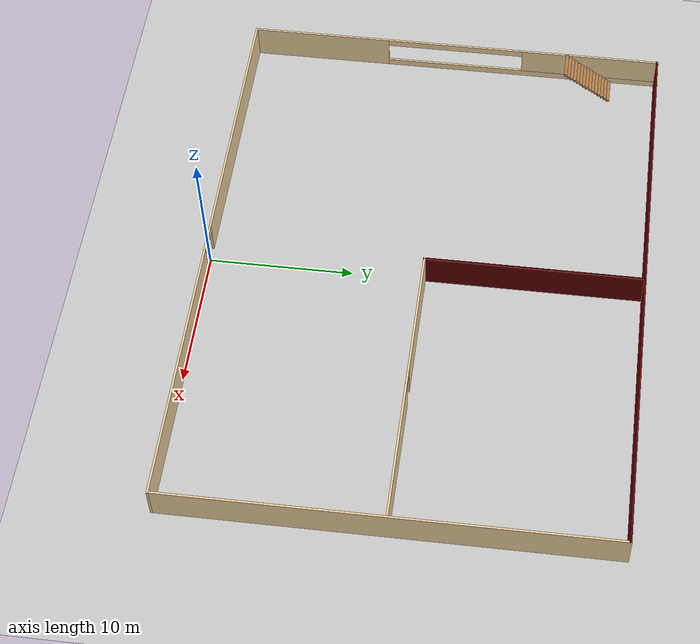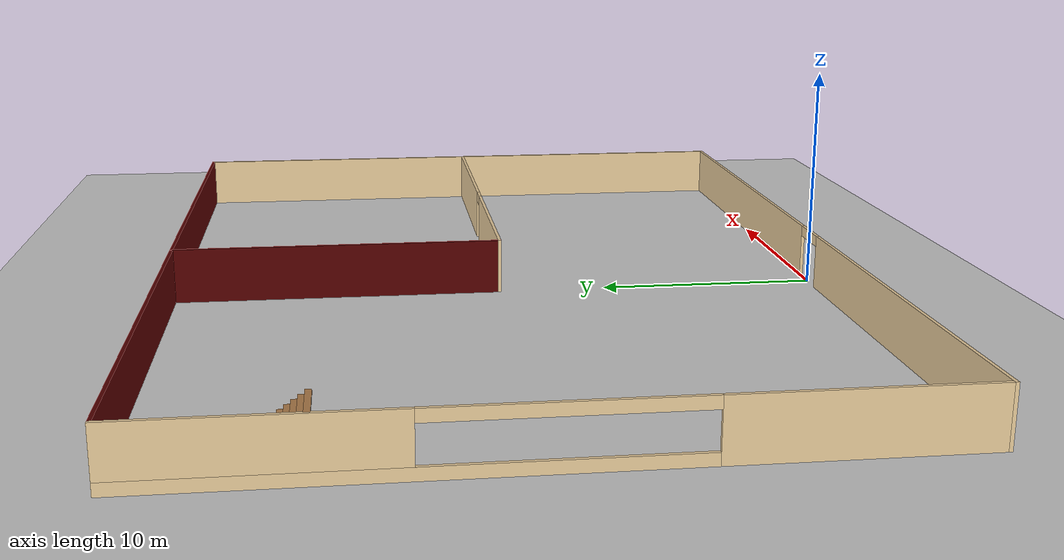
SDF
<sdf version="1.6">
 <world name="default">
  <model name="ground_plane">
   <static>1</static>
   <link name="link">
    <collision name="collision">
     <geometry><plane><normal>0 0 1</normal><size>100 100</size></plane></geometry>
     <surface>
      <contact><collide_bitmask>65535</collide_bitmask></contact>
      <friction><ode><mu>100</mu><mu2>50</mu2></ode></friction>
     </surface>
    </collision>
    <visual name="visual">
     <cast_shadows>0</cast_shadows>
     <geometry><plane><normal>0 0 1</normal><size>100 100</size></plane></geometry>
     <material>
      <script><uri>file://media/materials/scripts/gazebo.material</uri><name>Gazebo/Grey</name></script>
     </material>
    </visual>
   </link>
  </model>
  <model name="House">
   <pose>-0.004038 15 0 0 -0 0</pose>
   <link name="Stairs_0">
    <visual name="Stairs_0_Visual_0">
     <pose>-19 11.6333 0.083333 0 -0 0</pose>
     <geometry><box><size>2 0.233333 0.166667</size></box></geometry>
     <material>
      <script><uri>file://media/materials/scripts/gazebo.material</uri><name>Gazebo/Wood</name></script>
      <ambient>1 1 1 1</ambient>
     </material>
     <meta><layer>0</layer></meta>
    </visual>
    <collision name="Stairs_0_Collision_0">
     <geometry><box><size>2 0.233333 0.166667</size></box></geometry>
     <pose>-19 11.6333 0.083333 0 -0 0</pose>
    </collision>
    <visual name="Stairs_0_Visual_1">
     <pose>-19 11.4 0.25 0 -0 0</pose>
     <geometry><box><size>2 0.233333 0.166667</size></box></geometry>
     <material>
      <script><uri>file://media/materials/scripts/gazebo.material</uri><name>Gazebo/Wood</name></script>
      <ambient>1 1 1 1</ambient>
     </material>
     <meta><layer>0</layer></meta>
    </visual>
    <collision name="Stairs_0_Collision_1">
     <geometry><box><size>2 0.233333 0.166667</size></box></geometry>
     <pose>-19 11.4 0.25 0 -0 0</pose>
    </collision>
    <visual name="Stairs_0_Visual_2">
     <pose>-19 11.1667 0.416667 0 -0 0</pose>
     <geometry><box><size>2 0.233333 0.166667</size></box></geometry>
     <material>
      <script><uri>file://media/materials/scripts/gazebo.material</uri><name>Gazebo/Wood</name></script>
      <ambient>1 1 1 1</ambient>
     </material>
     <meta><layer>0</layer></meta>
    </visual>
    <collision name="Stairs_0_Collision_2">
     <geometry><box><size>2 0.233333 0.166667</size></box></geometry>
     <pose>-19 11.1667 0.416667 0 -0 0</pose>
    </collision>
    <visual name="Stairs_0_Visual_3">
     <pose>-19 10.9333 0.583333 0 -0 0</pose>
     <geometry><box><size>2 0.233333 0.166667</size></box></geometry>
     <material>
      <script><uri>file://media/materials/scripts/gazebo.material</uri><name>Gazebo/Wood</name></script>
      <ambient>1 1 1 1</ambient>
     </material>
     <meta><layer>0</layer></meta>
    </visual>
    <collision name="Stairs_0_Collision_3">
     <geometry><box><size>2 0.233333 0.166667</size></box></geometry>
     <pose>-19 10.9333 0.583333 0 -0 0</pose>
    </collision>
    <visual name="Stairs_0_Visual_4">
     <pose>-19 10.7 0.75 0 -0 0</pose>
     <geometry><box><size>2 0.233333 0.166667</size></box></geometry>
     <material>
      <script><uri>file://media/materials/scripts/gazebo.material</uri><name>Gazebo/Wood</name></script>
      <ambient>1 1 1 1</ambient>
     </material>
     <meta><layer>0</layer></meta>
    </visual>
    <collision name="Stairs_0_Collision_4">
     <geometry><box><size>2 0.233333 0.166667</size></box></geometry>
     <pose>-19 10.7 0.75 0 -0 0</pose>
    </collision>
    <visual name="Stairs_0_Visual_5">
     <pose>-19 10.4667 0.916667 0 -0 0</pose>
     <geometry><box><size>2 0.233333 0.166667</size></box></geometry>
     <material>
      <script><uri>file://media/materials/scripts/gazebo.material</uri><name>Gazebo/Wood</name></script>
      <ambient>1 1 1 1</ambient>
     </material>
     <meta><layer>0</layer></meta>
    </visual>
    <collision name="Stairs_0_Collision_5">
     <geometry><box><size>2 0.233333 0.166667</size></box></geometry>
     <pose>-19 10.4667 0.916667 0 -0 0</pose>
    </collision>
    <visual name="Stairs_0_Visual_6">
     <pose>-19 10.2333 1.08333 0 -0 0</pose>
     <geometry><box><size>2 0.233333 0.166667</size></box></geometry>
     <material>
      <script><uri>file://media/materials/scripts/gazebo.material</uri><name>Gazebo/Wood</name></script>
      <ambient>1 1 1 1</ambient>
     </material>
     <meta><layer>0</layer></meta>
    </visual>
    <collision name="Stairs_0_Collision_6">
     <geometry><box><size>2 0.233333 0.166667</size></box></geometry>
     <pose>-19 10.2333 1.08333 0 -0 0</pose>
    </collision>
    <visual name="Stairs_0_Visual_7">
     <pose>-19 10 1.25 0 -0 0</pose>
     <geometry><box><size>2 0.233333 0.166667</size></box></geometry>
     <material>
      <script><uri>file://media/materials/scripts/gazebo.material</uri><name>Gazebo/Wood</name></script>
      <ambient>1 1 1 1</ambient>
     </material>
     <meta><layer>0</layer></meta>
    </visual>
    <collision name="Stairs_0_Collision_7">
     <geometry><box><size>2 0.233333 0.166667</size></box></geometry>
     <pose>-19 10 1.25 0 -0 0</pose>
    </collision>
    <visual name="Stairs_0_Visual_8">
     <pose>-19 9.76667 1.41667 0 -0 0</pose>
     <geometry><box><size>2 0.233333 0.166667</size></box></geometry>
     <material>
      <script><uri>file://media/materials/scripts/gazebo.material</uri><name>Gazebo/Wood</name></script>
      <ambient>1 1 1 1</ambient>
     </material>
     <meta><layer>0</layer></meta>
    </visual>
    <collision name="Stairs_0_Collision_8">
     <geometry><box><size>2 0.233333 0.166667</size></box></geometry>
     <pose>-19 9.76667 1.41667 0 -0 0</pose>
    </collision>
    <visual name="Stairs_0_Visual_9">
     <pose>-19 9.53333 1.58333 0 -0 0</pose>
     <geometry><box><size>2 0.233333 0.166667</size></box></geometry>
     <material>
      <script><uri>file://media/materials/scripts/gazebo.material</uri><name>Gazebo/Wood</name></script>
      <ambient>1 1 1 1</ambient>
     </material>
     <meta><layer>0</layer></meta>
    </visual>
    <collision name="Stairs_0_Collision_9">
     <geometry><box><size>2 0.233333 0.166667</size></box></geometry>
     <pose>-19 9.53333 1.58333 0 -0 0</pose>
    </collision>
    <visual name="Stairs_0_Visual_10">
     <pose>-19 9.3 1.75 0 -0 0</pose>
     <geometry><box><size>2 0.233333 0.166667</size></box></geometry>
     <material>
      <script><uri>file://media/materials/scripts/gazebo.material</uri><name>Gazebo/Wood</name></script>
      <ambient>1 1 1 1</ambient>
     </material>
     <meta><layer>0</layer></meta>
    </visual>
    <collision name="Stairs_0_Collision_10">
     <geometry><box><size>2 0.233333 0.166667</size></box></geometry>
     <pose>-19 9.3 1.75 0 -0 0</pose>
    </collision>
    <visual name="Stairs_0_Visual_11">
     <pose>-19 9.06667 1.91667 0 -0 0</pose>
     <geometry><box><size>2 0.233333 0.166667</size></box></geometry>
     <material>
      <script><uri>file://media/materials/scripts/gazebo.material</uri><name>Gazebo/Wood</name></script>
      <ambient>1 1 1 1</ambient>
     </material>
     <meta><layer>0</layer></meta>
    </visual>
    <collision name="Stairs_0_Collision_11">
     <geometry><box><size>2 0.233333 0.166667</size></box></geometry>
     <pose>-19 9.06667 1.91667 0 -0 0</pose>
    </collision>
    <visual name="Stairs_0_Visual_12">
     <pose>-19 8.83333 2.08333 0 -0 0</pose>
     <geometry><box><size>2 0.233333 0.166667</size></box></geometry>
     <material>
      <script><uri>file://media/materials/scripts/gazebo.material</uri><name>Gazebo/Wood</name></script>
      <ambient>1 1 1 1</ambient>
     </material>
     <meta><layer>0</layer></meta>
    </visual>
    <collision name="Stairs_0_Collision_12">
     <geometry><box><size>2 0.233333 0.166667</size></box></geometry>
     <pose>-19 8.83333 2.08333 0 -0 0</pose>
    </collision>
    <visual name="Stairs_0_Visual_13">
     <pose>-19 8.6 2.25 0 -0 0</pose>
     <geometry><box><size>2 0.233333 0.166667</size></box></geometry>
     <material>
      <script><uri>file://media/materials/scripts/gazebo.material</uri><name>Gazebo/Wood</name></script>
      <ambient>1 1 1 1</ambient>
     </material>
     <meta><layer>0</layer></meta>
    </visual>
    <collision name="Stairs_0_Collision_13">
     <geometry><box><size>2 0.233333 0.166667</size></box></geometry>
     <pose>-19 8.6 2.25 0 -0 0</pose>
    </collision>
    <visual name="Stairs_0_Visual_14">
     <pose>-19 8.36667 2.41667 0 -0 0</pose>
     <geometry><box><size>2 0.233333 0.166667</size></box></geometry>
     <material>
      <script><uri>file://media/materials/scripts/gazebo.material</uri><name>Gazebo/Wood</name></script>
      <ambient>1 1 1 1</ambient>
     </material>
     <meta><layer>0</layer></meta>
    </visual>
    <collision name="Stairs_0_Collision_14">
     <geometry><box><size>2 0.233333 0.166667</size></box></geometry>
     <pose>-19 8.36667 2.41667 0 -0 0</pose>
    </collision>
   </link>
   <link name="Wall_0">
    <pose>-20 0 0 0 -0 1.5708</pose>
    <visual name="Wall_0_Visual_0">
     <pose>-10.0375 0 1.25 0 -0 0</pose>
     <geometry><box><size>10.075 0.15 2.5</size></box></geometry>
     <material>
      <script><uri>file://media/materials/scripts/gazebo.material</uri><name>Gazebo/Grey</name></script>
      <ambient>0.921569 0.807843 0.615686 1</ambient>
     </material>
     <meta><layer>0</layer></meta>
    </visual>
    <collision name="Wall_0_Collision_0">
     <geometry><box><size>10.075 0.15 2.5</size></box></geometry>
     <pose>-10.0375 0 1.25 0 -0 0</pose>
    </collision>
    <visual name="Wall_0_Visual_1">
     <pose>5.0375 0 0.25 0 -0 0</pose>
     <geometry><box><size>20.075 0.15 0.5</size></box></geometry>
     <material>
      <script><uri>file://media/materials/scripts/gazebo.material</uri><name>Gazebo/Grey</name></script>
      <ambient>0.921569 0.807843 0.615686 1</ambient>
     </material>
     <meta><layer>0</layer></meta>
    </visual>
    <collision name="Wall_0_Collision_1">
     <geometry><box><size>20.075 0.15 0.5</size></box></geometry>
     <pose>5.0375 0 0.25 0 -0 0</pose>
    </collision>
    <visual name="Wall_0_Visual_2">
     <pose>10.0375 0 1.5 0 -0 0</pose>
     <geometry><box><size>10.075 0.15 2</size></box></geometry>
     <material>
      <script><uri>file://media/materials/scripts/gazebo.material</uri><name>Gazebo/Grey</name></script>
      <ambient>0.921569 0.807843 0.615686 1</ambient>
     </material>
     <meta><layer>0</layer></meta>
    </visual>
    <collision name="Wall_0_Collision_2">
     <geometry><box><size>10.075 0.15 2</size></box></geometry>
     <pose>10.0375 0 1.5 0 -0 0</pose>
    </collision>
    <visual name="Wall_0_Visual_3">
     <pose>0 0 2.25 0 -0 0</pose>
     <geometry><box><size>10 0.15 0.5</size></box></geometry>
     <material>
      <script><uri>file://media/materials/scripts/gazebo.material</uri><name>Gazebo/Grey</name></script>
      <ambient>0.921569 0.807843 0.615686 1</ambient>
     </material>
     <meta><layer>0</layer></meta>
    </visual>
    <collision name="Wall_0_Collision_3">
     <geometry><box><size>10 0.15 0.5</size></box></geometry>
     <pose>0 0 2.25 0 -0 0</pose>
    </collision>
   </link>
   <link name="Wall_1">
    <collision name="Wall_1_Collision">
     <geometry><box><size>40.15 0.15 2.5</size></box></geometry>
     <pose>0 0 1.25 0 -0 0</pose>
    </collision>
    <visual name="Wall_1_Visual">
     <pose>0 0 1.25 0 -0 0</pose>
     <geometry><box><size>40.15 0.15 2.5</size></box></geometry>
     <material>
      <script><uri>file://media/materials/scripts/gazebo.material</uri><name>Gazebo/Grey</name></script>
      <ambient>0.333333 0 0 1</ambient>
     </material>
     <meta><layer>0</layer></meta>
    </visual>
    <pose>1e-06 15 0 0 -0 0</pose>
   </link>
   <link name="Wall_2">
    <collision name="Wall_2_Collision">
     <geometry><box><size>30.15 0.15 2.5</size></box></geometry>
     <pose>0 0 1.25 0 -0 0</pose>
    </collision>
    <visual name="Wall_2_Visual">
     <pose>0 0 1.25 0 -0 0</pose>
     <geometry><box><size>30.15 0.15 2.5</size></box></geometry>
     <material>
      <script><uri>file://media/materials/scripts/gazebo.material</uri><name>Gazebo/Grey</name></script>
      <ambient>0.921569 0.807843 0.615686 1</ambient>
     </material>
     <meta><layer>0</layer></meta>
    </visual>
    <pose>20 0 0 0 0 -1.5708</pose>
   </link>
   <link name="Wall_3">
    <pose>1e-06 -15 0 0 -0 3.14159</pose>
    <visual name="Wall_3_Visual_0">
     <pose>-10.5375 0 1.25 0 -0 0</pose>
     <geometry><box><size>19.075 0.15 2.5</size></box></geometry>
     <material>
      <script><uri>file://media/materials/scripts/gazebo.material</uri><name>Gazebo/Grey</name></script>
      <ambient>0.921569 0.807843 0.615686 1</ambient>
     </material>
     <meta><layer>0</layer></meta>
    </visual>
    <collision name="Wall_3_Collision_0">
     <geometry><box><size>19.075 0.15 2.5</size></box></geometry>
     <pose>-10.5375 0 1.25 0 -0 0</pose>
    </collision>
    <visual name="Wall_3_Visual_1">
     <pose>10.5375 0 1.25 0 -0 0</pose>
     <geometry><box><size>19.075 0.15 2.5</size></box></geometry>
     <material>
      <script><uri>file://media/materials/scripts/gazebo.material</uri><name>Gazebo/Grey</name></script>
      <ambient>0.921569 0.807843 0.615686 1</ambient>
     </material>
     <meta><layer>0</layer></meta>
    </visual>
    <collision name="Wall_3_Collision_1">
     <geometry><box><size>19.075 0.15 2.5</size></box></geometry>
     <pose>10.5375 0 1.25 0 -0 0</pose>
    </collision>
    <visual name="Wall_3_Visual_2">
     <pose>0 0 2.25 0 -0 0</pose>
     <geometry><box><size>2 0.15 0.5</size></box></geometry>
     <material>
      <script><uri>file://media/materials/scripts/gazebo.material</uri><name>Gazebo/Grey</name></script>
      <ambient>0.921569 0.807843 0.615686 1</ambient>
     </material>
     <meta><layer>0</layer></meta>
    </visual>
    <collision name="Wall_3_Collision_2">
     <geometry><box><size>2 0.15 0.5</size></box></geometry>
     <pose>0 0 2.25 0 -0 0</pose>
    </collision>
   </link>
   <link name="Wall_5">
    <pose>10 0 0 0 -0 3.14159</pose>
    <visual name="Wall_5_Visual_0">
     <pose>-5.11541 0 1.25 0 -0 0</pose>
     <geometry><box><size>9.91918 0.15 2.5</size></box></geometry>
     <material>
      <script><uri>file://media/materials/scripts/gazebo.material</uri><name>Gazebo/Grey</name></script>
      <ambient>0.921569 0.807843 0.615686 1</ambient>
     </material>
     <meta><layer>0</layer></meta>
    </visual>
    <collision name="Wall_5_Collision_0">
     <geometry><box><size>9.91918 0.15 2.5</size></box></geometry>
     <pose>-5.11541 0 1.25 0 -0 0</pose>
    </collision>
    <visual name="Wall_5_Visual_1">
     <pose>5.40959 0 1.25 0 -0 0</pose>
     <geometry><box><size>9.33082 0.15 2.5</size></box></geometry>
     <material>
      <script><uri>file://media/materials/scripts/gazebo.material</uri><name>Gazebo/Grey</name></script>
      <ambient>0.921569 0.807843 0.615686 1</ambient>
     </material>
     <meta><layer>0</layer></meta>
    </visual>
    <collision name="Wall_5_Collision_1">
     <geometry><box><size>9.33082 0.15 2.5</size></box></geometry>
     <pose>5.40959 0 1.25 0 -0 0</pose>
    </collision>
    <visual name="Wall_5_Visual_2">
     <pose>0.294178 0 2.25 0 -0 0</pose>
     <geometry><box><size>0.9 0.15 0.5</size></box></geometry>
     <material>
      <script><uri>file://media/materials/scripts/gazebo.material</uri><name>Gazebo/Grey</name></script>
      <ambient>0.921569 0.807843 0.615686 1</ambient>
     </material>
     <meta><layer>0</layer></meta>
    </visual>
    <collision name="Wall_5_Collision_2">
     <geometry><box><size>0.9 0.15 0.5</size></box></geometry>
     <pose>0.294178 0 2.25 0 -0 0</pose>
    </collision>
   </link>
   <link name="Wall_6">
    <collision name="Wall_6_Collision">
     <geometry><box><size>15.15 0.15 2.5</size></box></geometry>
     <pose>0 0 1.25 0 -0 0</pose>
    </collision>
    <visual name="Wall_6_Visual">
     <pose>0 0 1.25 0 -0 0</pose>
     <geometry><box><size>15.15 0.15 2.5</size></box></geometry>
     <material>
      <script><uri>file://media/materials/scripts/gazebo.material</uri><name>Gazebo/Grey</name></script>
      <ambient>0.333333 0 0 1</ambient>
     </material>
     <meta><layer>0</layer></meta>
    </visual>
    <pose>1e-06 7.5 0 0 -0 1.5708</pose>
   </link>
   <static>1</static>
  </model>
 </world>
</sdf>
